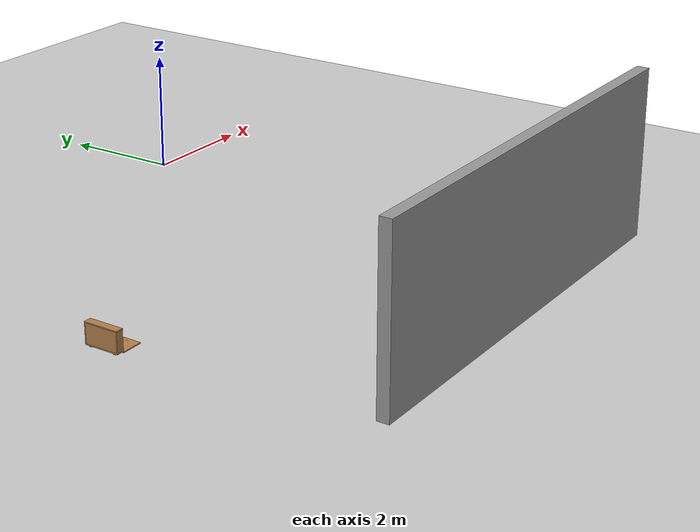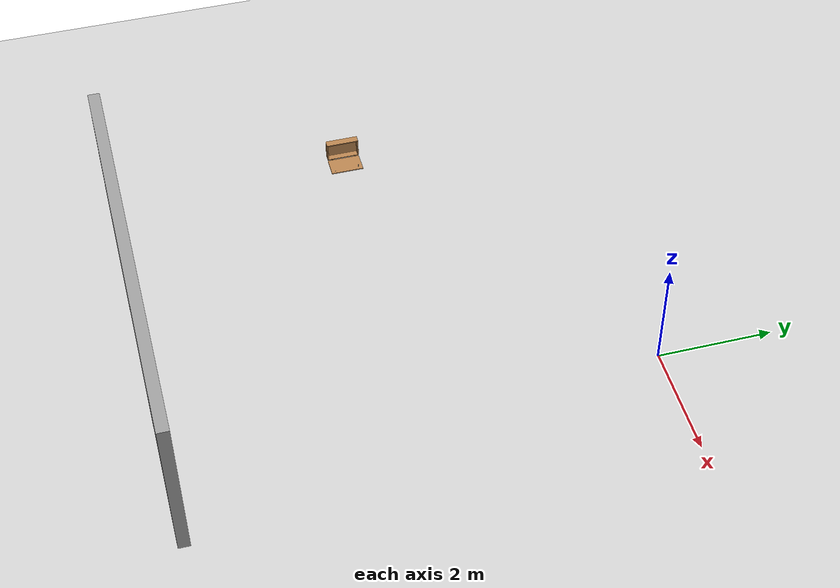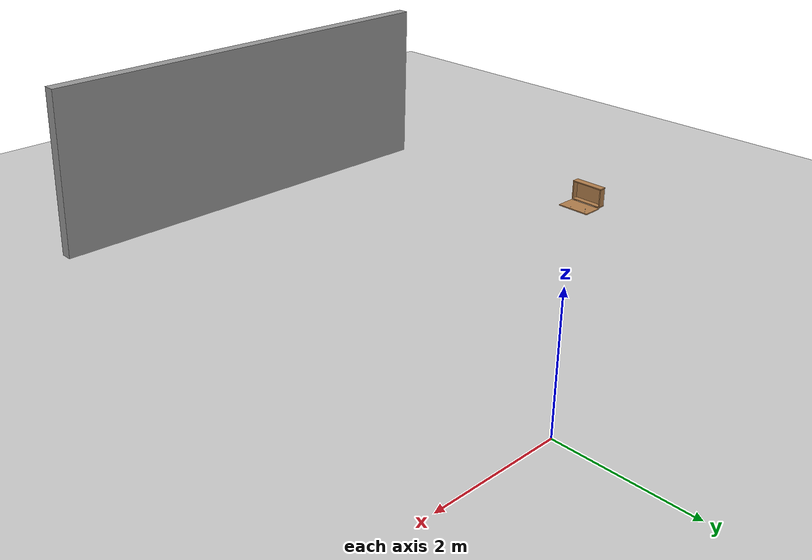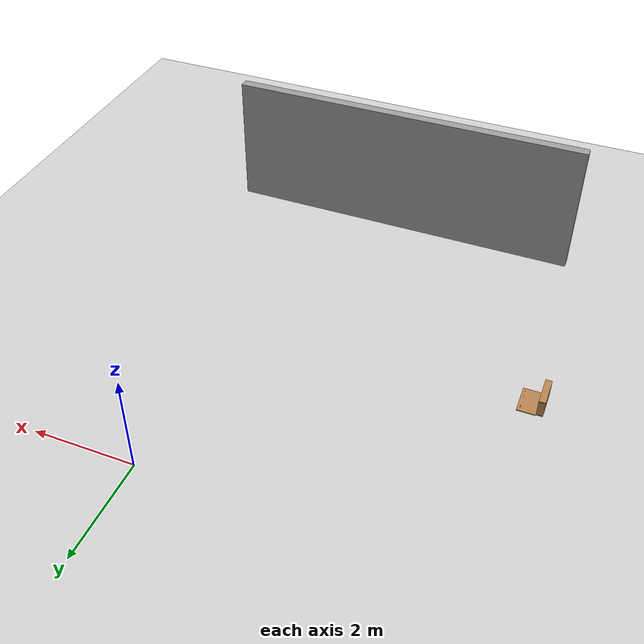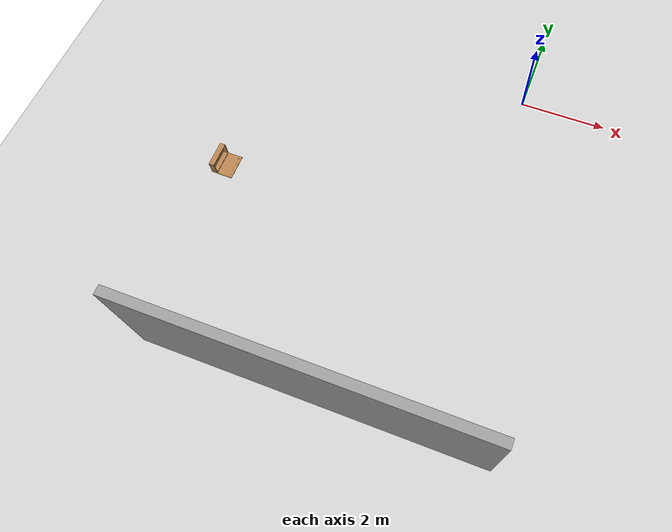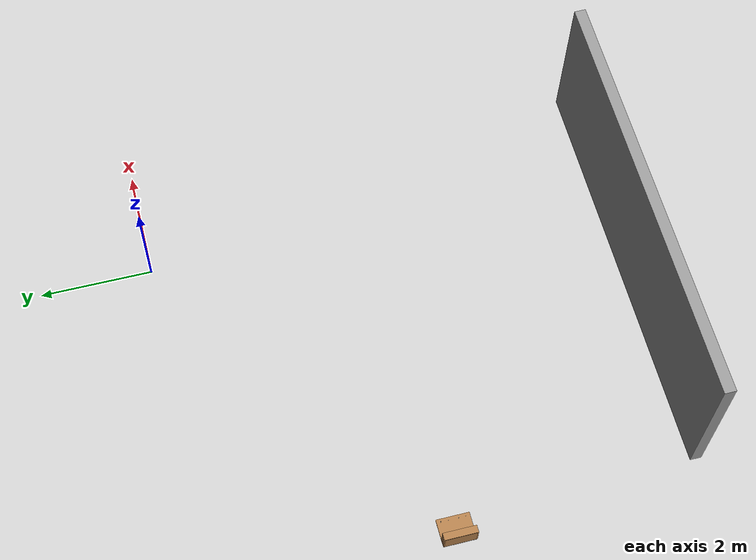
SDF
<sdf version="1.6">
 <world name="default">
  <light name="sun" type="directional">
   <pose>0 0 15 0 -0 0</pose>
   <diffuse>1 1 1 1</diffuse>
   <specular>0.1 0.1 0.1 1</specular>
   <attenuation>
    <range>1000</range>
    <constant>0.9</constant>
    <linear>0.01</linear>
    <quadratic>0.001</quadratic>
   </attenuation>
   <direction>-0.5 0.5 -1</direction>
  </light>
  <model name="ground_plane">
   <static>1</static>
   <link name="link">
    <collision name="collision">
     <geometry><plane><normal>0 0 1</normal><size>100 100</size></plane></geometry>
     <surface><friction><ode><mu>100</mu><mu2>50</mu2></ode></friction></surface>
    </collision>
    <visual name="visual">
     <transparency>1</transparency>
     <cast_shadows>0</cast_shadows>
     <geometry><plane><normal>0 0 1</normal><size>100 100</size></plane></geometry>
     <material>
      <script><uri>file://media/materials/scripts/gazebo.material</uri><name>Gazebo/Grey</name></script>
     </material>
    </visual>
   </link>
  </model>
  <gravity>0 0 -9.8</gravity>
  <magnetic_field>6e-06 2.3e-05 -4.2e-05</magnetic_field>
  <atmosphere type="adiabatic"/>
  <physics name="default_physics" default="0" type="ode">
   <max_step_size>0.001</max_step_size>
   <real_time_factor>1</real_time_factor>
   <real_time_update_rate>1000</real_time_update_rate>
  </physics>
  <scene><ambient>0.4 0.4 0.4 1</ambient><background>0.7 0.7 0.7 1</background><shadows>1</shadows></scene>
  <spherical_coordinates>
   <surface_model>EARTH_WGS84</surface_model>
   <latitude_deg>0</latitude_deg>
   <longitude_deg>0</longitude_deg>
   <elevation>0</elevation>
   <heading_deg>0</heading_deg>
  </spherical_coordinates>
  <model name="grey_wall_clone">
   <static>1</static>
   <link name="link">
    <pose>0 0 1.4 0 -0 0</pose>
    <collision name="collision"><geometry><box><size>7.5 0.2 2.8</size></box></geometry></collision>
    <visual name="visual">
     <cast_shadows>0</cast_shadows>
     <geometry><box><size>7.5 0.2 2.8</size></box></geometry>
     <material>
      <script>
       <uri>model://grey_wall/materials/scripts</uri>
       <uri>model://grey_wall/materials/textures</uri>
       <name>vrc/grey_wall</name>
      </script>
     </material>
    </visual>
   </link>
   <pose>-1.99718 -8.27214 -0.00377 0 -0 0</pose>
  </model>
  <model name="wooden_case_metal_peg">
   <link name="wooden_case::base">
    <pose>0 0 0.024 0 -0 0</pose>
    <inertial>
     <pose>-0.022184 0 0.171592 0 -0 0</pose>
     <mass>3.96264</mass>
     <inertia>
      <ixx>0.213536</ixx>
      <ixy>0</ixy>
      <ixz>0.000779377</ixz>
      <iyy>0.0708943</iyy>
      <iyz>0</iyz>
      <izz>0.154604</izz>
     </inertia>
    </inertial>
    <collision name="collision_back">
     <pose>-0.053975 0 0.1778 0 -0 0</pose>
     <geometry><box><size>0.01905 0.5461 0.3175</size></box></geometry>
     <surface>
      <contact>
       <poissons_ratio>0.347</poissons_ratio>
       <elastic_modulus>8.8e+09</elastic_modulus>
       <ode><kp>100000</kp><kd>100</kd><max_vel>100</max_vel><min_depth>0.001</min_depth></ode>
      </contact>
      <friction>
       <torsional>
        <coefficient>1</coefficient>
        <use_patch_radius>0</use_patch_radius>
        <surface_radius>0.01</surface_radius>
       </torsional>
      </friction>
     </surface>
    </collision>
    <visual name="visual_back">
     <pose>-0.053975 0 0.1778 0 -0 0</pose>
     <geometry><box><size>0.01905 0.5461 0.3175</size></box></geometry>
     <material>
      <script><uri>file://media/materials/scripts/gazebo.material</uri><name>Gazebo/Wood</name></script>
     </material>
    </visual>
    <collision name="collision_bottom">
     <pose>0 0 0.009525 0 -0 0</pose>
     <geometry><box><size>0.127 0.5842 0.01905</size></box></geometry>
     <surface>
      <contact>
       <poissons_ratio>0.347</poissons_ratio>
       <elastic_modulus>8.8e+09</elastic_modulus>
       <ode><kp>100000</kp><kd>100</kd><max_vel>100</max_vel><min_depth>0.001</min_depth></ode>
      </contact>
      <friction>
       <torsional>
        <coefficient>1</coefficient>
        <use_patch_radius>0</use_patch_radius>
        <surface_radius>0.01</surface_radius>
       </torsional>
      </friction>
     </surface>
    </collision>
    <visual name="visual_bottom">
     <pose>0 0 0.009525 0 -0 0</pose>
     <geometry><box><size>0.127 0.5842 0.01905</size></box></geometry>
     <material>
      <script><uri>file://media/materials/scripts/gazebo.material</uri><name>Gazebo/Wood</name></script>
     </material>
    </visual>
    <collision name="collision_top">
     <pose>0 0 0.346075 0 -0 0</pose>
     <geometry><box><size>0.127 0.5842 0.01905</size></box></geometry>
     <surface>
      <contact>
       <poissons_ratio>0.347</poissons_ratio>
       <elastic_modulus>8.8e+09</elastic_modulus>
       <ode><kp>100000</kp><kd>100</kd><max_vel>100</max_vel><min_depth>0.001</min_depth></ode>
      </contact>
      <friction>
       <torsional>
        <coefficient>1</coefficient>
        <use_patch_radius>0</use_patch_radius>
        <surface_radius>0.01</surface_radius>
       </torsional>
      </friction>
     </surface>
    </collision>
    <visual name="visual_top">
     <pose>0 0 0.346075 0 -0 0</pose>
     <geometry><box><size>0.127 0.5842 0.01905</size></box></geometry>
     <material>
      <script><uri>file://media/materials/scripts/gazebo.material</uri><name>Gazebo/Wood</name></script>
     </material>
    </visual>
    <collision name="collision_left">
     <pose>0 -0.282575 0.1778 0 -0 0</pose>
     <geometry><box><size>0.127 0.01905 0.3175</size></box></geometry>
     <surface>
      <contact>
       <poissons_ratio>0.347</poissons_ratio>
       <elastic_modulus>8.8e+09</elastic_modulus>
       <ode><kp>100000</kp><kd>100</kd><max_vel>100</max_vel><min_depth>0.001</min_depth></ode>
      </contact>
      <friction>
       <torsional>
        <coefficient>1</coefficient>
        <use_patch_radius>0</use_patch_radius>
        <surface_radius>0.01</surface_radius>
       </torsional>
      </friction>
     </surface>
    </collision>
    <visual name="visual_left">
     <pose>0 -0.282575 0.1778 0 -0 0</pose>
     <geometry><box><size>0.127 0.01905 0.3175</size></box></geometry>
     <material>
      <script><uri>file://media/materials/scripts/gazebo.material</uri><name>Gazebo/Wood</name></script>
     </material>
    </visual>
    <collision name="collision_right">
     <pose>0 0.282575 0.1778 0 -0 0</pose>
     <geometry><box><size>0.127 0.01905 0.3175</size></box></geometry>
     <surface>
      <contact>
       <poissons_ratio>0.347</poissons_ratio>
       <elastic_modulus>8.8e+09</elastic_modulus>
       <ode><kp>100000</kp><kd>100</kd><max_vel>100</max_vel><min_depth>0.001</min_depth></ode>
      </contact>
      <friction>
       <torsional>
        <coefficient>1</coefficient>
        <use_patch_radius>0</use_patch_radius>
        <surface_radius>0.01</surface_radius>
       </torsional>
      </friction>
     </surface>
    </collision>
    <visual name="visual_right">
     <pose>0 0.282575 0.1778 0 -0 0</pose>
     <geometry><box><size>0.127 0.01905 0.3175</size></box></geometry>
     <material>
      <script><uri>file://media/materials/scripts/gazebo.material</uri><name>Gazebo/Wood</name></script>
     </material>
    </visual>
    <collision name="collision_block_left">
     <pose>0.0095 -0.2151 -0.012 0 -0 0</pose>
     <geometry><box><size>0.108 0.05 0.024</size></box></geometry>
     <surface>
      <contact>
       <poissons_ratio>0.347</poissons_ratio>
       <elastic_modulus>8.8e+09</elastic_modulus>
       <ode><kp>100000</kp><kd>100</kd><max_vel>100</max_vel><min_depth>0.001</min_depth></ode>
      </contact>
      <friction>
       <torsional>
        <coefficient>1</coefficient>
        <use_patch_radius>0</use_patch_radius>
        <surface_radius>0.01</surface_radius>
       </torsional>
      </friction>
     </surface>
    </collision>
    <visual name="visual_block_left">
     <pose>0.0095 -0.2151 -0.012 0 -0 0</pose>
     <geometry><box><size>0.108 0.05 0.024</size></box></geometry>
     <material>
      <script><uri>file://media/materials/scripts/gazebo.material</uri><name>Gazebo/Wood</name></script>
     </material>
    </visual>
    <collision name="collision_block_right">
     <pose>0.0095 0.2151 -0.012 0 -0 0</pose>
     <geometry><box><size>0.108 0.05 0.024</size></box></geometry>
     <surface>
      <contact>
       <poissons_ratio>0.347</poissons_ratio>
       <elastic_modulus>8.8e+09</elastic_modulus>
       <ode><kp>100000</kp><kd>100</kd><max_vel>100</max_vel><min_depth>0.001</min_depth></ode>
      </contact>
      <friction>
       <torsional>
        <coefficient>1</coefficient>
        <use_patch_radius>0</use_patch_radius>
        <surface_radius>0.01</surface_radius>
       </torsional>
      </friction>
     </surface>
    </collision>
    <visual name="visual_block_right">
     <pose>0.0095 0.2151 -0.012 0 -0 0</pose>
     <geometry><box><size>0.108 0.05 0.024</size></box></geometry>
     <material>
      <script><uri>file://media/materials/scripts/gazebo.material</uri><name>Gazebo/Wood</name></script>
     </material>
    </visual>
   </link>
   <link name="wooden_case::lid">
    <pose>0.243775 0 0.009525 0 -0 0</pose>
    <inertial>
     <mass>1.97874</mass>
     <inertia>
      <ixx>0.0563367</ixx>
      <ixy>0</ixy>
      <ixz>0</ixz>
      <iyy>0.020911</iyy>
      <iyz>0</iyz>
      <izz>0.0771281</izz>
     </inertia>
    </inertial>
    <collision name="collision">
     <geometry><box><size>0.3556 0.5842 0.01905</size></box></geometry>
     <surface>
      <contact>
       <poissons_ratio>0.347</poissons_ratio>
       <elastic_modulus>8.8e+09</elastic_modulus>
       <ode><kp>100000</kp><kd>100</kd><max_vel>100</max_vel><min_depth>0.001</min_depth></ode>
      </contact>
      <friction>
       <torsional>
        <coefficient>1</coefficient>
        <use_patch_radius>0</use_patch_radius>
        <surface_radius>0.01</surface_radius>
       </torsional>
      </friction>
     </surface>
    </collision>
    <visual name="visual">
     <geometry><box><size>0.3556 0.5842 0.01905</size></box></geometry>
     <material>
      <script><uri>file://media/materials/scripts/gazebo.material</uri><name>Gazebo/Wood</name></script>
     </material>
    </visual>
    <visual name="tee_nut_1">
     <pose>0.122 -0.216 0 0 -0 0</pose>
     <geometry><cylinder><radius>0.00635</radius><length>0.0192405</length></cylinder></geometry>
     <material>
      <script><uri>file://media/materials/scripts/gazebo.material</uri><name>Gazebo/Grey</name></script>
     </material>
    </visual>
    <visual name="tee_nut_2">
     <pose>0.122 -0.088 0 0 -0 0</pose>
     <geometry><cylinder><radius>0.00635</radius><length>0.0192405</length></cylinder></geometry>
     <material>
      <script><uri>file://media/materials/scripts/gazebo.material</uri><name>Gazebo/Grey</name></script>
     </material>
    </visual>
    <visual name="tee_nut_3">
     <pose>0.122 0.088 0 0 -0 0</pose>
     <geometry><cylinder><radius>0.00635</radius><length>0.0192405</length></cylinder></geometry>
     <material>
      <script><uri>file://media/materials/scripts/gazebo.material</uri><name>Gazebo/Grey</name></script>
     </material>
    </visual>
    <visual name="tee_nut_4">
     <pose>0.122 0.216 0 0 -0 0</pose>
     <geometry><cylinder><radius>0.00635</radius><length>0.0192405</length></cylinder></geometry>
     <material>
      <script><uri>file://media/materials/scripts/gazebo.material</uri><name>Gazebo/Grey</name></script>
     </material>
    </visual>
   </link>
   <joint name="wooden_case::lid_hinge" type="revolute">
    <pose>-0.1778 0 0.01905 0 -0 0</pose>
    <parent>wooden_case::base</parent>
    <child>wooden_case::lid</child>
    <axis>
     <xyz>0 1 0</xyz>
     <limit><upper>0.523599</upper><lower>-1.5708</lower></limit>
     <use_parent_model_frame>0</use_parent_model_frame>
     <dynamics><spring_reference>0</spring_reference><spring_stiffness>0</spring_stiffness></dynamics>
    </axis>
   </joint>
   <link name="peg::link">
    <pose>0.365774 0.216 0.05005 0 -0 0</pose>
    <inertial>
     <mass>0.0121</mass>
     <inertia>
      <ixx>3.90898e-06</ixx>
      <ixy>0</ixy>
      <ixz>0</ixz>
      <iyy>3.90898e-06</iyy>
      <iyz>0</iyz>
      <izz>6.58845e-08</izz>
     </inertia>
    </inertial>
    <collision name="collision">
     <geometry><cylinder><radius>0.0033</radius><length>0.062</length></cylinder></geometry>
     <surface>
      <contact>
       <poissons_ratio>0.305</poissons_ratio>
       <elastic_modulus>2e+11</elastic_modulus>
       <ode><kp>100000</kp><kd>100</kd><max_vel>100</max_vel><min_depth>0.001</min_depth></ode>
      </contact>
      <friction>
       <torsional>
        <coefficient>1</coefficient>
        <use_patch_radius>0</use_patch_radius>
        <surface_radius>0.01</surface_radius>
       </torsional>
      </friction>
     </surface>
    </collision>
    <visual name="visual">
     <geometry><cylinder><radius>0.0033</radius><length>0.062</length></cylinder></geometry>
     <material>
      <script><uri>file://media/materials/scripts/gazebo.material</uri><name>Gazebo/Grey</name></script>
     </material>
    </visual>
   </link>
   <joint name="case_peg" type="revolute">
    <child>peg::link</child>
    <parent>wooden_case::lid</parent>
    <axis>
     <xyz>0 0 1</xyz>
     <limit><upper>0</upper><lower>0</lower></limit>
     <use_parent_model_frame>0</use_parent_model_frame>
     <dynamics><spring_reference>0</spring_reference><spring_stiffness>0</spring_stiffness></dynamics>
    </axis>
   </joint>
   <pose>-6.1529 -3.99876 -0.001057 0 -0.000427 1e-06</pose>
  </model>
 </world>
</sdf>
